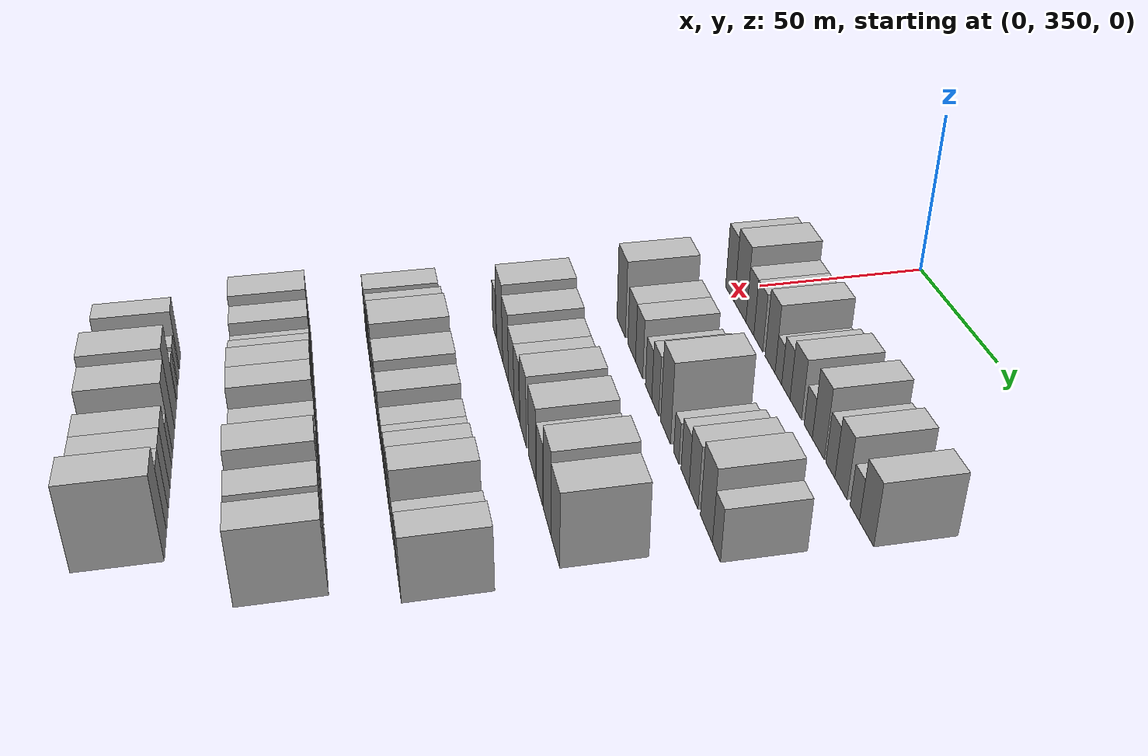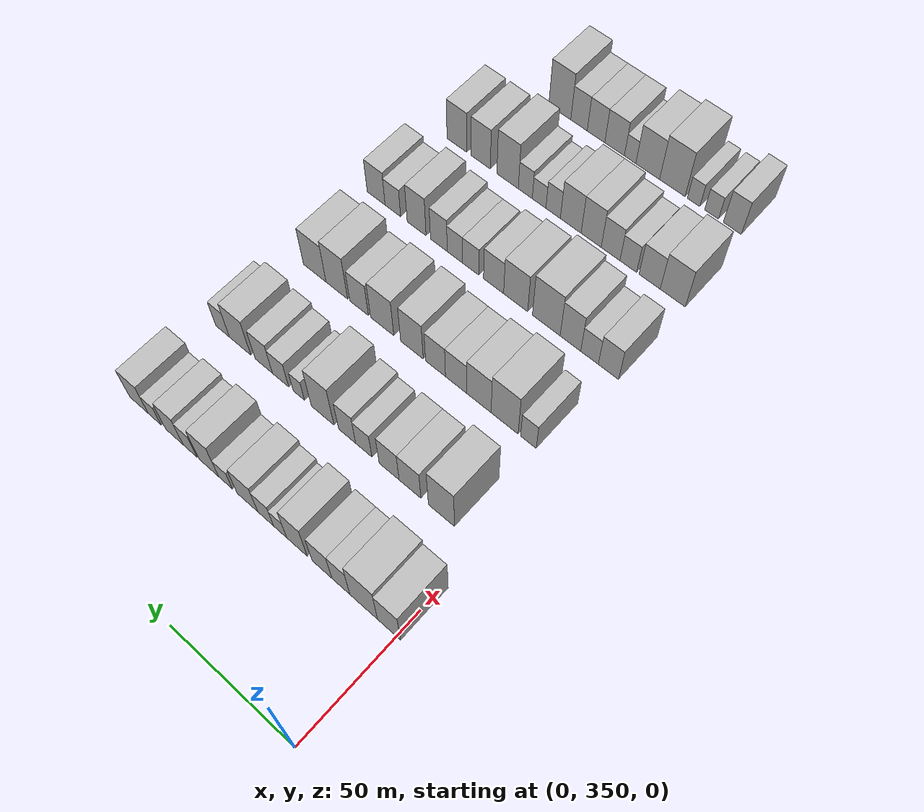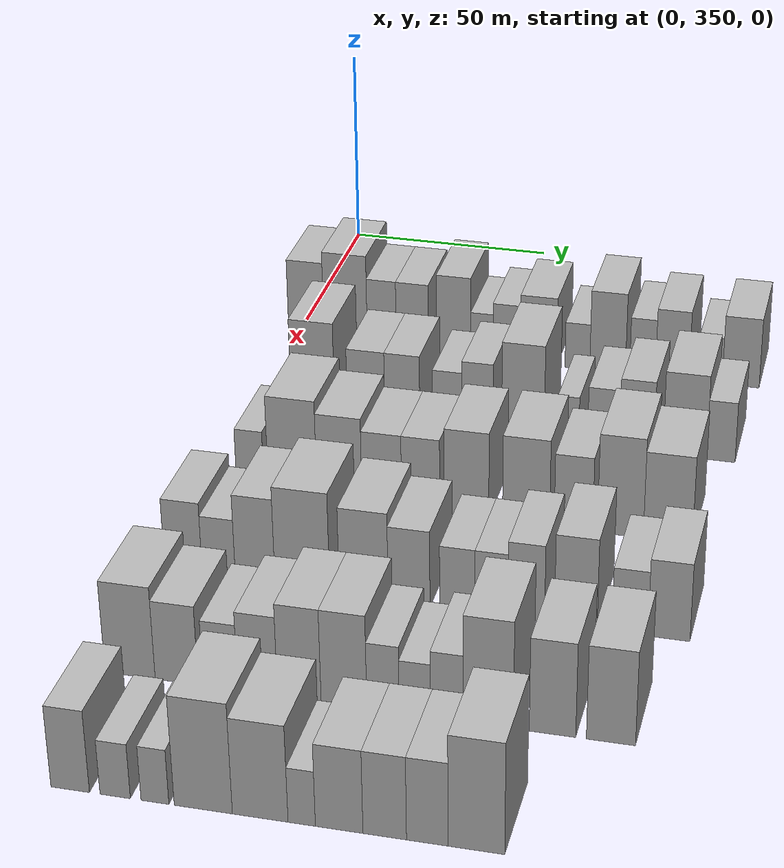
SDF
<sdf version="1.6">
 <world name="default">
  <model name="building_105">
   <static>1</static>
   <pose>50.0000 352.8204 0 0.000000 0.000000 0.000000</pose>
   <link name="link">
    <pose>0 0 10.50 0 0 0</pose>
    <collision name="collision"><geometry><box><size>20.0000 8.8828 21.0000</size></box></geometry></collision>
    <visual name="visual">
     <cast_shadows>0</cast_shadows>
     <geometry><box><size>20.0000 8.8828 21.0000</size></box></geometry>
     <material>
      <script>
       <uri>model://HANNAS_wall/materials/scripts</uri>
       <uri>model://HANNAS_wall/materials/textures</uri>
       <name>vrc/HANNAS_wall</name>
      </script>
     </material>
    </visual>
   </link>
  </model>
  <model name="building_106">
   <static>1</static>
   <pose>50.0000 362.6979 0 0.000000 0.000000 0.000000</pose>
   <link name="link">
    <pose>0 0 12.00 0 0 0</pose>
    <collision name="collision"><geometry><box><size>20.0000 10.8721 24.0000</size></box></geometry></collision>
    <visual name="visual">
     <cast_shadows>0</cast_shadows>
     <geometry><box><size>20.0000 10.8721 24.0000</size></box></geometry>
     <material>
      <script>
       <uri>model://HANNAS_wall/materials/scripts</uri>
       <uri>model://HANNAS_wall/materials/textures</uri>
       <name>vrc/HANNAS_wall</name>
      </script>
     </material>
    </visual>
   </link>
  </model>
  <model name="building_107">
   <static>1</static>
   <pose>50.0000 371.7403 0 0.000000 0.000000 0.000000</pose>
   <link name="link">
    <pose>0 0 9.00 0 0 0</pose>
    <collision name="collision"><geometry><box><size>20.0000 7.2127 18.0000</size></box></geometry></collision>
    <visual name="visual">
     <cast_shadows>0</cast_shadows>
     <geometry><box><size>20.0000 7.2127 18.0000</size></box></geometry>
     <material>
      <script>
       <uri>model://HANNAS_wall/materials/scripts</uri>
       <uri>model://HANNAS_wall/materials/textures</uri>
       <name>vrc/HANNAS_wall</name>
      </script>
     </material>
    </visual>
   </link>
  </model>
  <model name="building_108">
   <static>1</static>
   <pose>50.0000 379.3458 0 0.000000 0.000000 0.000000</pose>
   <link name="link">
    <pose>0 0 9.00 0 0 0</pose>
    <collision name="collision"><geometry><box><size>20.0000 7.9983 18.0000</size></box></geometry></collision>
    <visual name="visual">
     <cast_shadows>0</cast_shadows>
     <geometry><box><size>20.0000 7.9983 18.0000</size></box></geometry>
     <material>
      <script>
       <uri>model://HANNAS_wall/materials/scripts</uri>
       <uri>model://HANNAS_wall/materials/textures</uri>
       <name>vrc/HANNAS_wall</name>
      </script>
     </material>
    </visual>
   </link>
  </model>
  <model name="building_109">
   <static>1</static>
   <pose>50.0000 389.5497 0 0.000000 0.000000 0.000000</pose>
   <link name="link">
    <pose>0 0 10.50 0 0 0</pose>
    <collision name="collision"><geometry><box><size>20.0000 8.4095 21.0000</size></box></geometry></collision>
    <visual name="visual">
     <cast_shadows>0</cast_shadows>
     <geometry><box><size>20.0000 8.4095 21.0000</size></box></geometry>
     <material>
      <script>
       <uri>model://HANNAS_wall/materials/scripts</uri>
       <uri>model://HANNAS_wall/materials/textures</uri>
       <name>vrc/HANNAS_wall</name>
      </script>
     </material>
    </visual>
   </link>
  </model>
  <model name="building_110">
   <static>1</static>
   <pose>50.0000 396.4753 0 0.000000 0.000000 0.000000</pose>
   <link name="link">
    <pose>0 0 6.00 0 0 0</pose>
    <collision name="collision"><geometry><box><size>20.0000 5.4417 12.0000</size></box></geometry></collision>
    <visual name="visual">
     <cast_shadows>0</cast_shadows>
     <geometry><box><size>20.0000 5.4417 12.0000</size></box></geometry>
     <material>
      <script>
       <uri>model://HANNAS_wall/materials/scripts</uri>
       <uri>model://HANNAS_wall/materials/textures</uri>
       <name>vrc/HANNAS_wall</name>
      </script>
     </material>
    </visual>
   </link>
  </model>
  <model name="building_111">
   <static>1</static>
   <pose>50.0000 402.5344 0 0.000000 0.000000 0.000000</pose>
   <link name="link">
    <pose>0 0 7.50 0 0 0</pose>
    <collision name="collision"><geometry><box><size>20.0000 6.6766 15.0000</size></box></geometry></collision>
    <visual name="visual">
     <cast_shadows>0</cast_shadows>
     <geometry><box><size>20.0000 6.6766 15.0000</size></box></geometry>
     <material>
      <script>
       <uri>model://HANNAS_wall/materials/scripts</uri>
       <uri>model://HANNAS_wall/materials/textures</uri>
       <name>vrc/HANNAS_wall</name>
      </script>
     </material>
    </visual>
   </link>
  </model>
  <model name="building_112">
   <static>1</static>
   <pose>50.0000 410.3138 0 0.000000 0.000000 0.000000</pose>
   <link name="link">
    <pose>0 0 9.00 0 0 0</pose>
    <collision name="collision"><geometry><box><size>20.0000 8.8823 18.0000</size></box></geometry></collision>
    <visual name="visual">
     <cast_shadows>0</cast_shadows>
     <geometry><box><size>20.0000 8.8823 18.0000</size></box></geometry>
     <material>
      <script>
       <uri>model://HANNAS_wall/materials/scripts</uri>
       <uri>model://HANNAS_wall/materials/textures</uri>
       <name>vrc/HANNAS_wall</name>
      </script>
     </material>
    </visual>
   </link>
  </model>
  <model name="building_113">
   <static>1</static>
   <pose>50.0000 419.7466 0 0.000000 0.000000 0.000000</pose>
   <link name="link">
    <pose>0 0 6.00 0 0 0</pose>
    <collision name="collision"><geometry><box><size>20.0000 5.9832 12.0000</size></box></geometry></collision>
    <visual name="visual">
     <cast_shadows>0</cast_shadows>
     <geometry><box><size>20.0000 5.9832 12.0000</size></box></geometry>
     <material>
      <script>
       <uri>model://HANNAS_wall/materials/scripts</uri>
       <uri>model://HANNAS_wall/materials/textures</uri>
       <name>vrc/HANNAS_wall</name>
      </script>
     </material>
    </visual>
   </link>
  </model>
  <model name="building_114">
   <static>1</static>
   <pose>50.0000 427.0210 0 0.000000 0.000000 0.000000</pose>
   <link name="link">
    <pose>0 0 10.50 0 0 0</pose>
    <collision name="collision"><geometry><box><size>20.0000 8.5657 21.0000</size></box></geometry></collision>
    <visual name="visual">
     <cast_shadows>0</cast_shadows>
     <geometry><box><size>20.0000 8.5657 21.0000</size></box></geometry>
     <material>
      <script>
       <uri>model://HANNAS_wall/materials/scripts</uri>
       <uri>model://HANNAS_wall/materials/textures</uri>
       <name>vrc/HANNAS_wall</name>
      </script>
     </material>
    </visual>
   </link>
  </model>
  <model name="building_115">
   <static>1</static>
   <pose>50.0000 435.3842 0 0.000000 0.000000 0.000000</pose>
   <link name="link">
    <pose>0 0 7.50 0 0 0</pose>
    <collision name="collision"><geometry><box><size>20.0000 6.1606 15.0000</size></box></geometry></collision>
    <visual name="visual">
     <cast_shadows>0</cast_shadows>
     <geometry><box><size>20.0000 6.1606 15.0000</size></box></geometry>
     <material>
      <script>
       <uri>model://HANNAS_wall/materials/scripts</uri>
       <uri>model://HANNAS_wall/materials/textures</uri>
       <name>vrc/HANNAS_wall</name>
      </script>
     </material>
    </visual>
   </link>
  </model>
  <model name="building_116">
   <static>1</static>
   <pose>50.0000 442.4640 0 0.000000 0.000000 0.000000</pose>
   <link name="link">
    <pose>0 0 9.00 0 0 0</pose>
    <collision name="collision"><geometry><box><size>20.0000 7.9992 18.0000</size></box></geometry></collision>
    <visual name="visual">
     <cast_shadows>0</cast_shadows>
     <geometry><box><size>20.0000 7.9992 18.0000</size></box></geometry>
     <material>
      <script>
       <uri>model://HANNAS_wall/materials/scripts</uri>
       <uri>model://HANNAS_wall/materials/textures</uri>
       <name>vrc/HANNAS_wall</name>
      </script>
     </material>
    </visual>
   </link>
  </model>
  <model name="building_117">
   <static>1</static>
   <pose>50.0000 451.3855 0 0.000000 0.000000 0.000000</pose>
   <link name="link">
    <pose>0 0 6.00 0 0 0</pose>
    <collision name="collision"><geometry><box><size>20.0000 5.8438 12.0000</size></box></geometry></collision>
    <visual name="visual">
     <cast_shadows>0</cast_shadows>
     <geometry><box><size>20.0000 5.8438 12.0000</size></box></geometry>
     <material>
      <script>
       <uri>model://HANNAS_wall/materials/scripts</uri>
       <uri>model://HANNAS_wall/materials/textures</uri>
       <name>vrc/HANNAS_wall</name>
      </script>
     </material>
    </visual>
   </link>
  </model>
  <model name="building_118">
   <static>1</static>
   <pose>50.0000 458.6601 0 0.000000 0.000000 0.000000</pose>
   <link name="link">
    <pose>0 0 9.00 0 0 0</pose>
    <collision name="collision"><geometry><box><size>20.0000 8.7054 18.0000</size></box></geometry></collision>
    <visual name="visual">
     <cast_shadows>0</cast_shadows>
     <geometry><box><size>20.0000 8.7054 18.0000</size></box></geometry>
     <material>
      <script>
       <uri>model://HANNAS_wall/materials/scripts</uri>
       <uri>model://HANNAS_wall/materials/textures</uri>
       <name>vrc/HANNAS_wall</name>
      </script>
     </material>
    </visual>
   </link>
  </model>
  <model name="building_234">
   <static>1</static>
   <pose>85.0000 364.4984 0 0.000000 0.000000 0.000000</pose>
   <link name="link">
    <pose>0 0 12.00 0 0 0</pose>
    <collision name="collision"><geometry><box><size>20.0000 10.3341 24.0000</size></box></geometry></collision>
    <visual name="visual">
     <cast_shadows>0</cast_shadows>
     <geometry><box><size>20.0000 10.3341 24.0000</size></box></geometry>
     <material>
      <script>
       <uri>model://HANNAS_wall/materials/scripts</uri>
       <uri>model://HANNAS_wall/materials/textures</uri>
       <name>vrc/HANNAS_wall</name>
      </script>
     </material>
    </visual>
   </link>
  </model>
  <model name="building_235">
   <static>1</static>
   <pose>85.0000 377.0858 0 0.000000 0.000000 0.000000</pose>
   <link name="link">
    <pose>0 0 9.00 0 0 0</pose>
    <collision name="collision"><geometry><box><size>20.0000 8.8406 18.0000</size></box></geometry></collision>
    <visual name="visual">
     <cast_shadows>0</cast_shadows>
     <geometry><box><size>20.0000 8.8406 18.0000</size></box></geometry>
     <material>
      <script>
       <uri>model://HANNAS_wall/materials/scripts</uri>
       <uri>model://HANNAS_wall/materials/textures</uri>
       <name>vrc/HANNAS_wall</name>
      </script>
     </material>
    </visual>
   </link>
  </model>
  <model name="building_236">
   <static>1</static>
   <pose>85.0000 385.6129 0 0.000000 0.000000 0.000000</pose>
   <link name="link">
    <pose>0 0 9.00 0 0 0</pose>
    <collision name="collision"><geometry><box><size>20.0000 8.2138 18.0000</size></box></geometry></collision>
    <visual name="visual">
     <cast_shadows>0</cast_shadows>
     <geometry><box><size>20.0000 8.2138 18.0000</size></box></geometry>
     <material>
      <script>
       <uri>model://HANNAS_wall/materials/scripts</uri>
       <uri>model://HANNAS_wall/materials/textures</uri>
       <name>vrc/HANNAS_wall</name>
      </script>
     </material>
    </visual>
   </link>
  </model>
  <model name="building_237">
   <static>1</static>
   <pose>85.0000 396.1068 0 0.000000 0.000000 0.000000</pose>
   <link name="link">
    <pose>0 0 7.50 0 0 0</pose>
    <collision name="collision"><geometry><box><size>20.0000 6.7738 15.0000</size></box></geometry></collision>
    <visual name="visual">
     <cast_shadows>0</cast_shadows>
     <geometry><box><size>20.0000 6.7738 15.0000</size></box></geometry>
     <material>
      <script>
       <uri>model://HANNAS_wall/materials/scripts</uri>
       <uri>model://HANNAS_wall/materials/textures</uri>
       <name>vrc/HANNAS_wall</name>
      </script>
     </material>
    </visual>
   </link>
  </model>
  <model name="building_238">
   <static>1</static>
   <pose>85.0000 403.1127 0 0.000000 0.000000 0.000000</pose>
   <link name="link">
    <pose>0 0 9.00 0 0 0</pose>
    <collision name="collision"><geometry><box><size>20.0000 7.2381 18.0000</size></box></geometry></collision>
    <visual name="visual">
     <cast_shadows>0</cast_shadows>
     <geometry><box><size>20.0000 7.2381 18.0000</size></box></geometry>
     <material>
      <script>
       <uri>model://HANNAS_wall/materials/scripts</uri>
       <uri>model://HANNAS_wall/materials/textures</uri>
       <name>vrc/HANNAS_wall</name>
      </script>
     </material>
    </visual>
   </link>
  </model>
  <model name="building_239">
   <static>1</static>
   <pose>85.0000 413.6229 0 0.000000 0.000000 0.000000</pose>
   <link name="link">
    <pose>0 0 12.00 0 0 0</pose>
    <collision name="collision"><geometry><box><size>20.0000 9.7823 24.0000</size></box></geometry></collision>
    <visual name="visual">
     <cast_shadows>0</cast_shadows>
     <geometry><box><size>20.0000 9.7823 24.0000</size></box></geometry>
     <material>
      <script>
       <uri>model://HANNAS_wall/materials/scripts</uri>
       <uri>model://HANNAS_wall/materials/textures</uri>
       <name>vrc/HANNAS_wall</name>
      </script>
     </material>
    </visual>
   </link>
  </model>
  <model name="building_240">
   <static>1</static>
   <pose>85.0000 423.9757 0 0.000000 0.000000 0.000000</pose>
   <link name="link">
    <pose>0 0 6.00 0 0 0</pose>
    <collision name="collision"><geometry><box><size>20.0000 4.9233 12.0000</size></box></geometry></collision>
    <visual name="visual">
     <cast_shadows>0</cast_shadows>
     <geometry><box><size>20.0000 4.9233 12.0000</size></box></geometry>
     <material>
      <script>
       <uri>model://HANNAS_wall/materials/scripts</uri>
       <uri>model://HANNAS_wall/materials/textures</uri>
       <name>vrc/HANNAS_wall</name>
      </script>
     </material>
    </visual>
   </link>
  </model>
  <model name="building_241">
   <static>1</static>
   <pose>85.0000 432.0432 0 0.000000 0.000000 0.000000</pose>
   <link name="link">
    <pose>0 0 7.50 0 0 0</pose>
    <collision name="collision"><geometry><box><size>20.0000 7.2118 15.0000</size></box></geometry></collision>
    <visual name="visual">
     <cast_shadows>0</cast_shadows>
     <geometry><box><size>20.0000 7.2118 15.0000</size></box></geometry>
     <material>
      <script>
       <uri>model://HANNAS_wall/materials/scripts</uri>
       <uri>model://HANNAS_wall/materials/textures</uri>
       <name>vrc/HANNAS_wall</name>
      </script>
     </material>
    </visual>
   </link>
  </model>
  <model name="building_242">
   <static>1</static>
   <pose>85.0000 439.5660 0 0.000000 0.000000 0.000000</pose>
   <link name="link">
    <pose>0 0 9.00 0 0 0</pose>
    <collision name="collision"><geometry><box><size>20.0000 7.8336 18.0000</size></box></geometry></collision>
    <visual name="visual">
     <cast_shadows>0</cast_shadows>
     <geometry><box><size>20.0000 7.8336 18.0000</size></box></geometry>
     <material>
      <script>
       <uri>model://HANNAS_wall/materials/scripts</uri>
       <uri>model://HANNAS_wall/materials/textures</uri>
       <name>vrc/HANNAS_wall</name>
      </script>
     </material>
    </visual>
   </link>
  </model>
  <model name="building_243">
   <static>1</static>
   <pose>85.0000 450.3843 0 0.000000 0.000000 0.000000</pose>
   <link name="link">
    <pose>0 0 10.50 0 0 0</pose>
    <collision name="collision"><geometry><box><size>20.0000 9.8031 21.0000</size></box></geometry></collision>
    <visual name="visual">
     <cast_shadows>0</cast_shadows>
     <geometry><box><size>20.0000 9.8031 21.0000</size></box></geometry>
     <material>
      <script>
       <uri>model://HANNAS_wall/materials/scripts</uri>
       <uri>model://HANNAS_wall/materials/textures</uri>
       <name>vrc/HANNAS_wall</name>
      </script>
     </material>
    </visual>
   </link>
  </model>
  <model name="building_244">
   <static>1</static>
   <pose>85.0000 458.4680 0 0.000000 0.000000 0.000000</pose>
   <link name="link">
    <pose>0 0 7.50 0 0 0</pose>
    <collision name="collision"><geometry><box><size>20.0000 6.3643 15.0000</size></box></geometry></collision>
    <visual name="visual">
     <cast_shadows>0</cast_shadows>
     <geometry><box><size>20.0000 6.3643 15.0000</size></box></geometry>
     <material>
      <script>
       <uri>model://HANNAS_wall/materials/scripts</uri>
       <uri>model://HANNAS_wall/materials/textures</uri>
       <name>vrc/HANNAS_wall</name>
      </script>
     </material>
    </visual>
   </link>
  </model>
  <model name="building_360">
   <static>1</static>
   <pose>120.0000 360.3605 0 0.000000 0.000000 0.000000</pose>
   <link name="link">
    <pose>0 0 7.50 0 0 0</pose>
    <collision name="collision"><geometry><box><size>20.0000 6.2069 15.0000</size></box></geometry></collision>
    <visual name="visual">
     <cast_shadows>0</cast_shadows>
     <geometry><box><size>20.0000 6.2069 15.0000</size></box></geometry>
     <material>
      <script>
       <uri>model://HANNAS_wall/materials/scripts</uri>
       <uri>model://HANNAS_wall/materials/textures</uri>
       <name>vrc/HANNAS_wall</name>
      </script>
     </material>
    </visual>
   </link>
  </model>
  <model name="building_361">
   <static>1</static>
   <pose>120.0000 369.9229 0 0.000000 0.000000 0.000000</pose>
   <link name="link">
    <pose>0 0 12.00 0 0 0</pose>
    <collision name="collision"><geometry><box><size>20.0000 10.9179 24.0000</size></box></geometry></collision>
    <visual name="visual">
     <cast_shadows>0</cast_shadows>
     <geometry><box><size>20.0000 10.9179 24.0000</size></box></geometry>
     <material>
      <script>
       <uri>model://HANNAS_wall/materials/scripts</uri>
       <uri>model://HANNAS_wall/materials/textures</uri>
       <name>vrc/HANNAS_wall</name>
      </script>
     </material>
    </visual>
   </link>
  </model>
  <model name="building_362">
   <static>1</static>
   <pose>120.0000 380.4005 0 0.000000 0.000000 0.000000</pose>
   <link name="link">
    <pose>0 0 10.50 0 0 0</pose>
    <collision name="collision"><geometry><box><size>20.0000 10.0373 21.0000</size></box></geometry></collision>
    <visual name="visual">
     <cast_shadows>0</cast_shadows>
     <geometry><box><size>20.0000 10.0373 21.0000</size></box></geometry>
     <material>
      <script>
       <uri>model://HANNAS_wall/materials/scripts</uri>
       <uri>model://HANNAS_wall/materials/textures</uri>
       <name>vrc/HANNAS_wall</name>
      </script>
     </material>
    </visual>
   </link>
  </model>
  <model name="building_363">
   <static>1</static>
   <pose>120.0000 389.8211 0 0.000000 0.000000 0.000000</pose>
   <link name="link">
    <pose>0 0 9.00 0 0 0</pose>
    <collision name="collision"><geometry><box><size>20.0000 8.8040 18.0000</size></box></geometry></collision>
    <visual name="visual">
     <cast_shadows>0</cast_shadows>
     <geometry><box><size>20.0000 8.8040 18.0000</size></box></geometry>
     <material>
      <script>
       <uri>model://HANNAS_wall/materials/scripts</uri>
       <uri>model://HANNAS_wall/materials/textures</uri>
       <name>vrc/HANNAS_wall</name>
      </script>
     </material>
    </visual>
   </link>
  </model>
  <model name="building_364">
   <static>1</static>
   <pose>120.0000 398.4219 0 0.000000 0.000000 0.000000</pose>
   <link name="link">
    <pose>0 0 9.00 0 0 0</pose>
    <collision name="collision"><geometry><box><size>20.0000 8.3977 18.0000</size></box></geometry></collision>
    <visual name="visual">
     <cast_shadows>0</cast_shadows>
     <geometry><box><size>20.0000 8.3977 18.0000</size></box></geometry>
     <material>
      <script>
       <uri>model://HANNAS_wall/materials/scripts</uri>
       <uri>model://HANNAS_wall/materials/textures</uri>
       <name>vrc/HANNAS_wall</name>
      </script>
     </material>
    </visual>
   </link>
  </model>
  <model name="building_365">
   <static>1</static>
   <pose>120.0000 408.4763 0 0.000000 0.000000 0.000000</pose>
   <link name="link">
    <pose>0 0 10.50 0 0 0</pose>
    <collision name="collision"><geometry><box><size>20.0000 9.7112 21.0000</size></box></geometry></collision>
    <visual name="visual">
     <cast_shadows>0</cast_shadows>
     <geometry><box><size>20.0000 9.7112 21.0000</size></box></geometry>
     <material>
      <script>
       <uri>model://HANNAS_wall/materials/scripts</uri>
       <uri>model://HANNAS_wall/materials/textures</uri>
       <name>vrc/HANNAS_wall</name>
      </script>
     </material>
    </visual>
   </link>
  </model>
  <model name="building_366">
   <static>1</static>
   <pose>120.0000 421.4243 0 0.000000 0.000000 0.000000</pose>
   <link name="link">
    <pose>0 0 10.50 0 0 0</pose>
    <collision name="collision"><geometry><box><size>20.0000 10.1846 21.0000</size></box></geometry></collision>
    <visual name="visual">
     <cast_shadows>0</cast_shadows>
     <geometry><box><size>20.0000 10.1846 21.0000</size></box></geometry>
     <material>
      <script>
       <uri>model://HANNAS_wall/materials/scripts</uri>
       <uri>model://HANNAS_wall/materials/textures</uri>
       <name>vrc/HANNAS_wall</name>
      </script>
     </material>
    </visual>
   </link>
  </model>
  <model name="building_367">
   <static>1</static>
   <pose>120.0000 431.6570 0 0.000000 0.000000 0.000000</pose>
   <link name="link">
    <pose>0 0 9.00 0 0 0</pose>
    <collision name="collision"><geometry><box><size>20.0000 8.2808 18.0000</size></box></geometry></collision>
    <visual name="visual">
     <cast_shadows>0</cast_shadows>
     <geometry><box><size>20.0000 8.2808 18.0000</size></box></geometry>
     <material>
      <script>
       <uri>model://HANNAS_wall/materials/scripts</uri>
       <uri>model://HANNAS_wall/materials/textures</uri>
       <name>vrc/HANNAS_wall</name>
      </script>
     </material>
    </visual>
   </link>
  </model>
  <model name="building_368">
   <static>1</static>
   <pose>120.0000 441.6971 0 0.000000 0.000000 0.000000</pose>
   <link name="link">
    <pose>0 0 12.00 0 0 0</pose>
    <collision name="collision"><geometry><box><size>20.0000 9.7995 24.0000</size></box></geometry></collision>
    <visual name="visual">
     <cast_shadows>0</cast_shadows>
     <geometry><box><size>20.0000 9.7995 24.0000</size></box></geometry>
     <material>
      <script>
       <uri>model://HANNAS_wall/materials/scripts</uri>
       <uri>model://HANNAS_wall/materials/textures</uri>
       <name>vrc/HANNAS_wall</name>
      </script>
     </material>
    </visual>
   </link>
  </model>
  <model name="building_369">
   <static>1</static>
   <pose>120.0000 451.7980 0 0.000000 0.000000 0.000000</pose>
   <link name="link">
    <pose>0 0 10.50 0 0 0</pose>
    <collision name="collision"><geometry><box><size>20.0000 10.4023 21.0000</size></box></geometry></collision>
    <visual name="visual">
     <cast_shadows>0</cast_shadows>
     <geometry><box><size>20.0000 10.4023 21.0000</size></box></geometry>
     <material>
      <script>
       <uri>model://HANNAS_wall/materials/scripts</uri>
       <uri>model://HANNAS_wall/materials/textures</uri>
       <name>vrc/HANNAS_wall</name>
      </script>
     </material>
    </visual>
   </link>
  </model>
  <model name="building_486">
   <static>1</static>
   <pose>155.0000 356.9534 0 0.000000 0.000000 0.000000</pose>
   <link name="link">
    <pose>0 0 9.00 0 0 0</pose>
    <collision name="collision"><geometry><box><size>20.0000 8.0599 18.0000</size></box></geometry></collision>
    <visual name="visual">
     <cast_shadows>0</cast_shadows>
     <geometry><box><size>20.0000 8.0599 18.0000</size></box></geometry>
     <material>
      <script>
       <uri>model://HANNAS_wall/materials/scripts</uri>
       <uri>model://HANNAS_wall/materials/textures</uri>
       <name>vrc/HANNAS_wall</name>
      </script>
     </material>
    </visual>
   </link>
  </model>
  <model name="building_487">
   <static>1</static>
   <pose>155.0000 364.5270 0 0.000000 0.000000 0.000000</pose>
   <link name="link">
    <pose>0 0 7.50 0 0 0</pose>
    <collision name="collision"><geometry><box><size>20.0000 7.0871 15.0000</size></box></geometry></collision>
    <visual name="visual">
     <cast_shadows>0</cast_shadows>
     <geometry><box><size>20.0000 7.0871 15.0000</size></box></geometry>
     <material>
      <script>
       <uri>model://HANNAS_wall/materials/scripts</uri>
       <uri>model://HANNAS_wall/materials/textures</uri>
       <name>vrc/HANNAS_wall</name>
      </script>
     </material>
    </visual>
   </link>
  </model>
  <model name="building_488">
   <static>1</static>
   <pose>155.0000 372.2798 0 0.000000 0.000000 0.000000</pose>
   <link name="link">
    <pose>0 0 10.50 0 0 0</pose>
    <collision name="collision"><geometry><box><size>20.0000 8.4185 21.0000</size></box></geometry></collision>
    <visual name="visual">
     <cast_shadows>0</cast_shadows>
     <geometry><box><size>20.0000 8.4185 21.0000</size></box></geometry>
     <material>
      <script>
       <uri>model://HANNAS_wall/materials/scripts</uri>
       <uri>model://HANNAS_wall/materials/textures</uri>
       <name>vrc/HANNAS_wall</name>
      </script>
     </material>
    </visual>
   </link>
  </model>
  <model name="building_489">
   <static>1</static>
   <pose>155.0000 382.2517 0 0.000000 0.000000 0.000000</pose>
   <link name="link">
    <pose>0 0 12.00 0 0 0</pose>
    <collision name="collision"><geometry><box><size>20.0000 11.5252 24.0000</size></box></geometry></collision>
    <visual name="visual">
     <cast_shadows>0</cast_shadows>
     <geometry><box><size>20.0000 11.5252 24.0000</size></box></geometry>
     <material>
      <script>
       <uri>model://HANNAS_wall/materials/scripts</uri>
       <uri>model://HANNAS_wall/materials/textures</uri>
       <name>vrc/HANNAS_wall</name>
      </script>
     </material>
    </visual>
   </link>
  </model>
  <model name="building_490">
   <static>1</static>
   <pose>155.0000 395.1085 0 0.000000 0.000000 0.000000</pose>
   <link name="link">
    <pose>0 0 10.50 0 0 0</pose>
    <collision name="collision"><geometry><box><size>20.0000 10.1884 21.0000</size></box></geometry></collision>
    <visual name="visual">
     <cast_shadows>0</cast_shadows>
     <geometry><box><size>20.0000 10.1884 21.0000</size></box></geometry>
     <material>
      <script>
       <uri>model://HANNAS_wall/materials/scripts</uri>
       <uri>model://HANNAS_wall/materials/textures</uri>
       <name>vrc/HANNAS_wall</name>
      </script>
     </material>
    </visual>
   </link>
  </model>
  <model name="building_491">
   <static>1</static>
   <pose>155.0000 404.5279 0 0.000000 0.000000 0.000000</pose>
   <link name="link">
    <pose>0 0 9.00 0 0 0</pose>
    <collision name="collision"><geometry><box><size>20.0000 8.6505 18.0000</size></box></geometry></collision>
    <visual name="visual">
     <cast_shadows>0</cast_shadows>
     <geometry><box><size>20.0000 8.6505 18.0000</size></box></geometry>
     <material>
      <script>
       <uri>model://HANNAS_wall/materials/scripts</uri>
       <uri>model://HANNAS_wall/materials/textures</uri>
       <name>vrc/HANNAS_wall</name>
      </script>
     </material>
    </visual>
   </link>
  </model>
  <model name="building_492">
   <static>1</static>
   <pose>155.0000 414.4685 0 0.000000 0.000000 0.000000</pose>
   <link name="link">
    <pose>0 0 7.50 0 0 0</pose>
    <collision name="collision"><geometry><box><size>20.0000 7.2306 15.0000</size></box></geometry></collision>
    <visual name="visual">
     <cast_shadows>0</cast_shadows>
     <geometry><box><size>20.0000 7.2306 15.0000</size></box></geometry>
     <material>
      <script>
       <uri>model://HANNAS_wall/materials/scripts</uri>
       <uri>model://HANNAS_wall/materials/textures</uri>
       <name>vrc/HANNAS_wall</name>
      </script>
     </material>
    </visual>
   </link>
  </model>
  <model name="building_493">
   <static>1</static>
   <pose>155.0000 421.4285 0 0.000000 0.000000 0.000000</pose>
   <link name="link">
    <pose>0 0 7.50 0 0 0</pose>
    <collision name="collision"><geometry><box><size>20.0000 6.6894 15.0000</size></box></geometry></collision>
    <visual name="visual">
     <cast_shadows>0</cast_shadows>
     <geometry><box><size>20.0000 6.6894 15.0000</size></box></geometry>
     <material>
      <script>
       <uri>model://HANNAS_wall/materials/scripts</uri>
       <uri>model://HANNAS_wall/materials/textures</uri>
       <name>vrc/HANNAS_wall</name>
      </script>
     </material>
    </visual>
   </link>
  </model>
  <model name="building_494">
   <static>1</static>
   <pose>155.0000 428.5148 0 0.000000 0.000000 0.000000</pose>
   <link name="link">
    <pose>0 0 9.00 0 0 0</pose>
    <collision name="collision"><geometry><box><size>20.0000 7.4831 18.0000</size></box></geometry></collision>
    <visual name="visual">
     <cast_shadows>0</cast_shadows>
     <geometry><box><size>20.0000 7.4831 18.0000</size></box></geometry>
     <material>
      <script>
       <uri>model://HANNAS_wall/materials/scripts</uri>
       <uri>model://HANNAS_wall/materials/textures</uri>
       <name>vrc/HANNAS_wall</name>
      </script>
     </material>
    </visual>
   </link>
  </model>
  <model name="building_495">
   <static>1</static>
   <pose>155.0000 438.5478 0 0.000000 0.000000 0.000000</pose>
   <link name="link">
    <pose>0 0 10.50 0 0 0</pose>
    <collision name="collision"><geometry><box><size>20.0000 8.5830 21.0000</size></box></geometry></collision>
    <visual name="visual">
     <cast_shadows>0</cast_shadows>
     <geometry><box><size>20.0000 8.5830 21.0000</size></box></geometry>
     <material>
      <script>
       <uri>model://HANNAS_wall/materials/scripts</uri>
       <uri>model://HANNAS_wall/materials/textures</uri>
       <name>vrc/HANNAS_wall</name>
      </script>
     </material>
    </visual>
   </link>
  </model>
  <model name="building_496">
   <static>1</static>
   <pose>155.0000 449.4277 0 0.000000 0.000000 0.000000</pose>
   <link name="link">
    <pose>0 0 7.50 0 0 0</pose>
    <collision name="collision"><geometry><box><size>20.0000 7.1769 15.0000</size></box></geometry></collision>
    <visual name="visual">
     <cast_shadows>0</cast_shadows>
     <geometry><box><size>20.0000 7.1769 15.0000</size></box></geometry>
     <material>
      <script>
       <uri>model://HANNAS_wall/materials/scripts</uri>
       <uri>model://HANNAS_wall/materials/textures</uri>
       <name>vrc/HANNAS_wall</name>
      </script>
     </material>
    </visual>
   </link>
  </model>
  <model name="building_497">
   <static>1</static>
   <pose>155.0000 457.1933 0 0.000000 0.000000 0.000000</pose>
   <link name="link">
    <pose>0 0 9.00 0 0 0</pose>
    <collision name="collision"><geometry><box><size>20.0000 8.3543 18.0000</size></box></geometry></collision>
    <visual name="visual">
     <cast_shadows>0</cast_shadows>
     <geometry><box><size>20.0000 8.3543 18.0000</size></box></geometry>
     <material>
      <script>
       <uri>model://HANNAS_wall/materials/scripts</uri>
       <uri>model://HANNAS_wall/materials/textures</uri>
       <name>vrc/HANNAS_wall</name>
      </script>
     </material>
    </visual>
   </link>
  </model>
  <model name="building_604">
   <static>1</static>
   <pose>190.0000 357.9438 0 0.000000 0.000000 0.000000</pose>
   <link name="link">
    <pose>0 0 10.50 0 0 0</pose>
    <collision name="collision"><geometry><box><size>20.0000 10.1535 21.0000</size></box></geometry></collision>
    <visual name="visual">
     <cast_shadows>0</cast_shadows>
     <geometry><box><size>20.0000 10.1535 21.0000</size></box></geometry>
     <material>
      <script>
       <uri>model://HANNAS_wall/materials/scripts</uri>
       <uri>model://HANNAS_wall/materials/textures</uri>
       <name>vrc/HANNAS_wall</name>
      </script>
     </material>
    </visual>
   </link>
  </model>
  <model name="building_605">
   <static>1</static>
   <pose>190.0000 367.3547 0 0.000000 0.000000 0.000000</pose>
   <link name="link">
    <pose>0 0 9.00 0 0 0</pose>
    <collision name="collision"><geometry><box><size>20.0000 8.6683 18.0000</size></box></geometry></collision>
    <visual name="visual">
     <cast_shadows>0</cast_shadows>
     <geometry><box><size>20.0000 8.6683 18.0000</size></box></geometry>
     <material>
      <script>
       <uri>model://HANNAS_wall/materials/scripts</uri>
       <uri>model://HANNAS_wall/materials/textures</uri>
       <name>vrc/HANNAS_wall</name>
      </script>
     </material>
    </visual>
   </link>
  </model>
  <model name="building_606">
   <static>1</static>
   <pose>190.0000 376.1464 0 0.000000 0.000000 0.000000</pose>
   <link name="link">
    <pose>0 0 7.50 0 0 0</pose>
    <collision name="collision"><geometry><box><size>20.0000 6.9152 15.0000</size></box></geometry></collision>
    <visual name="visual">
     <cast_shadows>0</cast_shadows>
     <geometry><box><size>20.0000 6.9152 15.0000</size></box></geometry>
     <material>
      <script>
       <uri>model://HANNAS_wall/materials/scripts</uri>
       <uri>model://HANNAS_wall/materials/textures</uri>
       <name>vrc/HANNAS_wall</name>
      </script>
     </material>
    </visual>
   </link>
  </model>
  <model name="building_607">
   <static>1</static>
   <pose>190.0000 383.5462 0 0.000000 0.000000 0.000000</pose>
   <link name="link">
    <pose>0 0 9.00 0 0 0</pose>
    <collision name="collision"><geometry><box><size>20.0000 7.8843 18.0000</size></box></geometry></collision>
    <visual name="visual">
     <cast_shadows>0</cast_shadows>
     <geometry><box><size>20.0000 7.8843 18.0000</size></box></geometry>
     <material>
      <script>
       <uri>model://HANNAS_wall/materials/scripts</uri>
       <uri>model://HANNAS_wall/materials/textures</uri>
       <name>vrc/HANNAS_wall</name>
      </script>
     </material>
    </visual>
   </link>
  </model>
  <model name="building_608">
   <static>1</static>
   <pose>190.0000 391.7745 0 0.000000 0.000000 0.000000</pose>
   <link name="link">
    <pose>0 0 10.50 0 0 0</pose>
    <collision name="collision"><geometry><box><size>20.0000 8.5723 21.0000</size></box></geometry></collision>
    <visual name="visual">
     <cast_shadows>0</cast_shadows>
     <geometry><box><size>20.0000 8.5723 21.0000</size></box></geometry>
     <material>
      <script>
       <uri>model://HANNAS_wall/materials/scripts</uri>
       <uri>model://HANNAS_wall/materials/textures</uri>
       <name>vrc/HANNAS_wall</name>
      </script>
     </material>
    </visual>
   </link>
  </model>
  <model name="building_609">
   <static>1</static>
   <pose>190.0000 400.5300 0 0.000000 0.000000 0.000000</pose>
   <link name="link">
    <pose>0 0 10.50 0 0 0</pose>
    <collision name="collision"><geometry><box><size>20.0000 8.9388 21.0000</size></box></geometry></collision>
    <visual name="visual">
     <cast_shadows>0</cast_shadows>
     <geometry><box><size>20.0000 8.9388 21.0000</size></box></geometry>
     <material>
      <script>
       <uri>model://HANNAS_wall/materials/scripts</uri>
       <uri>model://HANNAS_wall/materials/textures</uri>
       <name>vrc/HANNAS_wall</name>
      </script>
     </material>
    </visual>
   </link>
  </model>
  <model name="building_610">
   <static>1</static>
   <pose>190.0000 408.1469 0 0.000000 0.000000 0.000000</pose>
   <link name="link">
    <pose>0 0 7.50 0 0 0</pose>
    <collision name="collision"><geometry><box><size>20.0000 6.2949 15.0000</size></box></geometry></collision>
    <visual name="visual">
     <cast_shadows>0</cast_shadows>
     <geometry><box><size>20.0000 6.2949 15.0000</size></box></geometry>
     <material>
      <script>
       <uri>model://HANNAS_wall/materials/scripts</uri>
       <uri>model://HANNAS_wall/materials/textures</uri>
       <name>vrc/HANNAS_wall</name>
      </script>
     </material>
    </visual>
   </link>
  </model>
  <model name="building_611">
   <static>1</static>
   <pose>190.0000 414.2925 0 0.000000 0.000000 0.000000</pose>
   <link name="link">
    <pose>0 0 6.00 0 0 0</pose>
    <collision name="collision"><geometry><box><size>20.0000 5.9963 12.0000</size></box></geometry></collision>
    <visual name="visual">
     <cast_shadows>0</cast_shadows>
     <geometry><box><size>20.0000 5.9963 12.0000</size></box></geometry>
     <material>
      <script>
       <uri>model://HANNAS_wall/materials/scripts</uri>
       <uri>model://HANNAS_wall/materials/textures</uri>
       <name>vrc/HANNAS_wall</name>
      </script>
     </material>
    </visual>
   </link>
  </model>
  <model name="building_612">
   <static>1</static>
   <pose>190.0000 420.4175 0 0.000000 0.000000 0.000000</pose>
   <link name="link">
    <pose>0 0 7.50 0 0 0</pose>
    <collision name="collision"><geometry><box><size>20.0000 6.2537 15.0000</size></box></geometry></collision>
    <visual name="visual">
     <cast_shadows>0</cast_shadows>
     <geometry><box><size>20.0000 6.2537 15.0000</size></box></geometry>
     <material>
      <script>
       <uri>model://HANNAS_wall/materials/scripts</uri>
       <uri>model://HANNAS_wall/materials/textures</uri>
       <name>vrc/HANNAS_wall</name>
      </script>
     </material>
    </visual>
   </link>
  </model>
  <model name="building_613">
   <static>1</static>
   <pose>190.0000 428.3637 0 0.000000 0.000000 0.000000</pose>
   <link name="link">
    <pose>0 0 12.00 0 0 0</pose>
    <collision name="collision"><geometry><box><size>20.0000 9.6389 24.0000</size></box></geometry></collision>
    <visual name="visual">
     <cast_shadows>0</cast_shadows>
     <geometry><box><size>20.0000 9.6389 24.0000</size></box></geometry>
     <material>
      <script>
       <uri>model://HANNAS_wall/materials/scripts</uri>
       <uri>model://HANNAS_wall/materials/textures</uri>
       <name>vrc/HANNAS_wall</name>
      </script>
     </material>
    </visual>
   </link>
  </model>
  <model name="building_614">
   <static>1</static>
   <pose>190.0000 440.5735 0 0.000000 0.000000 0.000000</pose>
   <link name="link">
    <pose>0 0 10.50 0 0 0</pose>
    <collision name="collision"><geometry><box><size>20.0000 8.7807 21.0000</size></box></geometry></collision>
    <visual name="visual">
     <cast_shadows>0</cast_shadows>
     <geometry><box><size>20.0000 8.7807 21.0000</size></box></geometry>
     <material>
      <script>
       <uri>model://HANNAS_wall/materials/scripts</uri>
       <uri>model://HANNAS_wall/materials/textures</uri>
       <name>vrc/HANNAS_wall</name>
      </script>
     </material>
    </visual>
   </link>
  </model>
  <model name="building_615">
   <static>1</static>
   <pose>190.0000 451.5626 0 0.000000 0.000000 0.000000</pose>
   <link name="link">
    <pose>0 0 10.50 0 0 0</pose>
    <collision name="collision"><geometry><box><size>20.0000 9.1976 21.0000</size></box></geometry></collision>
    <visual name="visual">
     <cast_shadows>0</cast_shadows>
     <geometry><box><size>20.0000 9.1976 21.0000</size></box></geometry>
     <material>
      <script>
       <uri>model://HANNAS_wall/materials/scripts</uri>
       <uri>model://HANNAS_wall/materials/textures</uri>
       <name>vrc/HANNAS_wall</name>
      </script>
     </material>
    </visual>
   </link>
  </model>
  <model name="building_732">
   <static>1</static>
   <pose>225.0000 359.1934 0 0.000000 0.000000 0.000000</pose>
   <link name="link">
    <pose>0 0 9.00 0 0 0</pose>
    <collision name="collision"><geometry><box><size>20.0000 7.3282 18.0000</size></box></geometry></collision>
    <visual name="visual">
     <cast_shadows>0</cast_shadows>
     <geometry><box><size>20.0000 7.3282 18.0000</size></box></geometry>
     <material>
      <script>
       <uri>model://HANNAS_wall/materials/scripts</uri>
       <uri>model://HANNAS_wall/materials/textures</uri>
       <name>vrc/HANNAS_wall</name>
      </script>
     </material>
    </visual>
   </link>
  </model>
  <model name="building_733">
   <static>1</static>
   <pose>225.0000 367.7260 0 0.000000 0.000000 0.000000</pose>
   <link name="link">
    <pose>0 0 6.00 0 0 0</pose>
    <collision name="collision"><geometry><box><size>20.0000 5.7370 12.0000</size></box></geometry></collision>
    <visual name="visual">
     <cast_shadows>0</cast_shadows>
     <geometry><box><size>20.0000 5.7370 12.0000</size></box></geometry>
     <material>
      <script>
       <uri>model://HANNAS_wall/materials/scripts</uri>
       <uri>model://HANNAS_wall/materials/textures</uri>
       <name>vrc/HANNAS_wall</name>
      </script>
     </material>
    </visual>
   </link>
  </model>
  <model name="building_734">
   <static>1</static>
   <pose>225.0000 375.2096 0 0.000000 0.000000 0.000000</pose>
   <link name="link">
    <pose>0 0 6.00 0 0 0</pose>
    <collision name="collision"><geometry><box><size>20.0000 5.2300 12.0000</size></box></geometry></collision>
    <visual name="visual">
     <cast_shadows>0</cast_shadows>
     <geometry><box><size>20.0000 5.2300 12.0000</size></box></geometry>
     <material>
      <script>
       <uri>model://HANNAS_wall/materials/scripts</uri>
       <uri>model://HANNAS_wall/materials/textures</uri>
       <name>vrc/HANNAS_wall</name>
      </script>
     </material>
    </visual>
   </link>
  </model>
  <model name="building_735">
   <static>1</static>
   <pose>225.0000 384.2332 0 0.000000 0.000000 0.000000</pose>
   <link name="link">
    <pose>0 0 12.00 0 0 0</pose>
    <collision name="collision"><geometry><box><size>20.0000 10.8172 24.0000</size></box></geometry></collision>
    <visual name="visual">
     <cast_shadows>0</cast_shadows>
     <geometry><box><size>20.0000 10.8172 24.0000</size></box></geometry>
     <material>
      <script>
       <uri>model://HANNAS_wall/materials/scripts</uri>
       <uri>model://HANNAS_wall/materials/textures</uri>
       <name>vrc/HANNAS_wall</name>
      </script>
     </material>
    </visual>
   </link>
  </model>
  <model name="building_736">
   <static>1</static>
   <pose>225.0000 394.7691 0 0.000000 0.000000 0.000000</pose>
   <link name="link">
    <pose>0 0 10.50 0 0 0</pose>
    <collision name="collision"><geometry><box><size>20.0000 10.2546 21.0000</size></box></geometry></collision>
    <visual name="visual">
     <cast_shadows>0</cast_shadows>
     <geometry><box><size>20.0000 10.2546 21.0000</size></box></geometry>
     <material>
      <script>
       <uri>model://HANNAS_wall/materials/scripts</uri>
       <uri>model://HANNAS_wall/materials/textures</uri>
       <name>vrc/HANNAS_wall</name>
      </script>
     </material>
    </visual>
   </link>
  </model>
  <model name="building_737">
   <static>1</static>
   <pose>225.0000 402.3955 0 0.000000 0.000000 0.000000</pose>
   <link name="link">
    <pose>0 0 6.00 0 0 0</pose>
    <collision name="collision"><geometry><box><size>20.0000 4.9982 12.0000</size></box></geometry></collision>
    <visual name="visual">
     <cast_shadows>0</cast_shadows>
     <geometry><box><size>20.0000 4.9982 12.0000</size></box></geometry>
     <material>
      <script>
       <uri>model://HANNAS_wall/materials/scripts</uri>
       <uri>model://HANNAS_wall/materials/textures</uri>
       <name>vrc/HANNAS_wall</name>
      </script>
     </material>
    </visual>
   </link>
  </model>
  <model name="building_738">
   <static>1</static>
   <pose>225.0000 409.2175 0 0.000000 0.000000 0.000000</pose>
   <link name="link">
    <pose>0 0 9.00 0 0 0</pose>
    <collision name="collision"><geometry><box><size>20.0000 8.6459 18.0000</size></box></geometry></collision>
    <visual name="visual">
     <cast_shadows>0</cast_shadows>
     <geometry><box><size>20.0000 8.6459 18.0000</size></box></geometry>
     <material>
      <script>
       <uri>model://HANNAS_wall/materials/scripts</uri>
       <uri>model://HANNAS_wall/materials/textures</uri>
       <name>vrc/HANNAS_wall</name>
      </script>
     </material>
    </visual>
   </link>
  </model>
  <model name="building_739">
   <static>1</static>
   <pose>225.0000 417.4679 0 0.000000 0.000000 0.000000</pose>
   <link name="link">
    <pose>0 0 9.00 0 0 0</pose>
    <collision name="collision"><geometry><box><size>20.0000 7.8547 18.0000</size></box></geometry></collision>
    <visual name="visual">
     <cast_shadows>0</cast_shadows>
     <geometry><box><size>20.0000 7.8547 18.0000</size></box></geometry>
     <material>
      <script>
       <uri>model://HANNAS_wall/materials/scripts</uri>
       <uri>model://HANNAS_wall/materials/textures</uri>
       <name>vrc/HANNAS_wall</name>
      </script>
     </material>
    </visual>
   </link>
  </model>
  <model name="building_740">
   <static>1</static>
   <pose>225.0000 425.1103 0 0.000000 0.000000 0.000000</pose>
   <link name="link">
    <pose>0 0 9.00 0 0 0</pose>
    <collision name="collision"><geometry><box><size>20.0000 7.4302 18.0000</size></box></geometry></collision>
    <visual name="visual">
     <cast_shadows>0</cast_shadows>
     <geometry><box><size>20.0000 7.4302 18.0000</size></box></geometry>
     <material>
      <script>
       <uri>model://HANNAS_wall/materials/scripts</uri>
       <uri>model://HANNAS_wall/materials/textures</uri>
       <name>vrc/HANNAS_wall</name>
      </script>
     </material>
    </visual>
   </link>
  </model>
  <model name="building_741">
   <static>1</static>
   <pose>225.0000 433.8645 0 0.000000 0.000000 0.000000</pose>
   <link name="link">
    <pose>0 0 12.00 0 0 0</pose>
    <collision name="collision"><geometry><box><size>20.0000 10.0780 24.0000</size></box></geometry></collision>
    <visual name="visual">
     <cast_shadows>0</cast_shadows>
     <geometry><box><size>20.0000 10.0780 24.0000</size></box></geometry>
     <material>
      <script>
       <uri>model://HANNAS_wall/materials/scripts</uri>
       <uri>model://HANNAS_wall/materials/textures</uri>
       <name>vrc/HANNAS_wall</name>
      </script>
     </material>
    </visual>
   </link>
  </model>
 </world>
</sdf>
